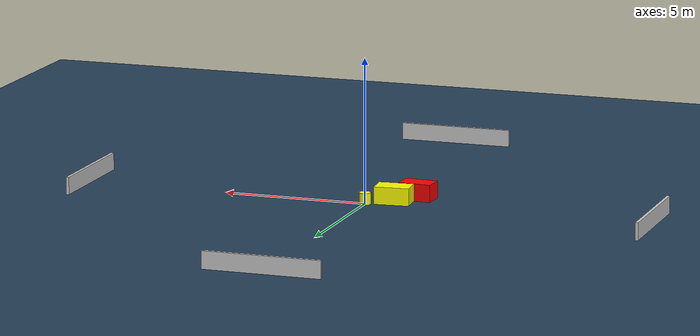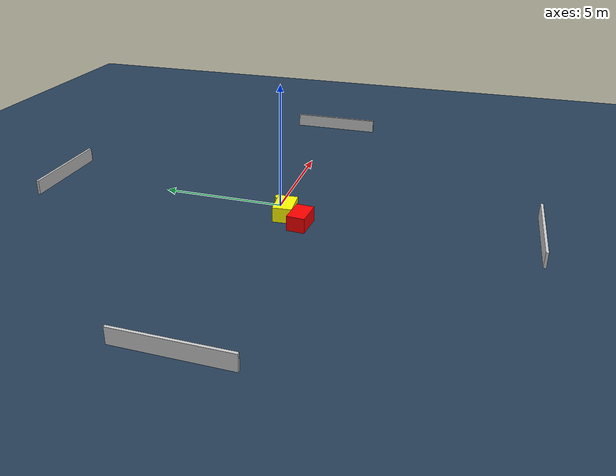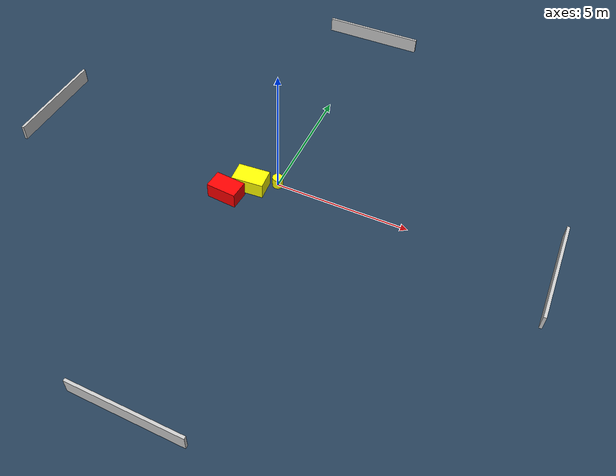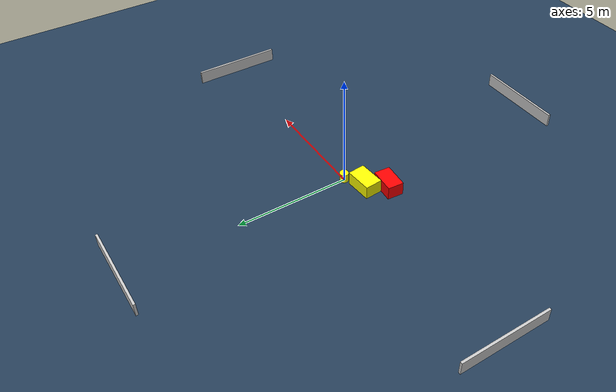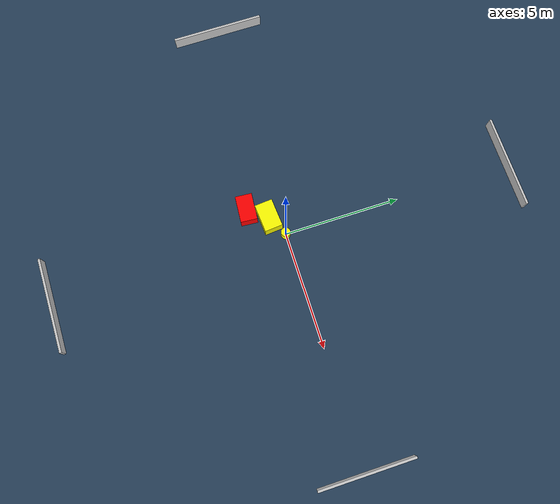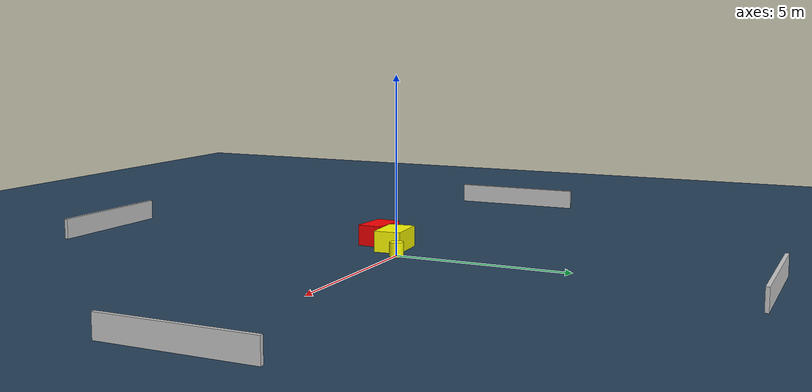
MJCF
<?xml version="1.0" ?>
<mujoco model="generated_environment">
  <option timestep="0.01" integrator="RK4" cone="elliptic"/>
  <default>
    <geom density="1"/>
  </default>
  <asset>
    <texture builtin="gradient" height="3072" name="skybox" rgb1="0.3 0.5 0.7" rgb2="0 0 0" type="skybox" width="512"/>
    <texture builtin="checker" height="300" name="groundplane" rgb1="0.2 0.3 0.4" rgb2="0.1 0.2 0.3" type="2d" width="300"/>
    <material name="groundplane" reflectance="0.2" texrepeat="5 5" texture="groundplane"/>
  </asset>
  <worldbody>
    <light dir="0 0 -1" directional="true" pos="0 0 1.5"/>
    <geom condim="3" friction="0.5 0.005 0.001" material="groundplane" name="floor" pos="0 0 0" size="0 0 0.05" type="plane"/>
    <body name="walls">
      <geom name="wall_1" condim="4" pos="-10.0 0.0 0.3" rgba="0.800000011920929 0.800000011920929 0.800000011920929 1.0" size="0.05 2.0 0.3" type="box"/>
      <geom name="wall_2" condim="4" pos="10.0 0.0 0.3" rgba="0.800000011920929 0.800000011920929 0.800000011920929 1.0" size="0.05 2.0 0.3" type="box"/>
      <geom name="wall_3" condim="4" pos="0.0 -10.0 0.3" rgba="0.800000011920929 0.800000011920929 0.800000011920929 1.0" size="2.0 0.05 0.3" type="box"/>
      <geom name="wall_4" condim="4" pos="0.0 10.0 0.3" rgba="0.800000011920929 0.800000011920929 0.800000011920929 1.0" size="2.0 0.05 0.3" type="box"/>
    </body>
    <body name="robot">
      <joint name="joint_x" type="slide" pos="0 0 0" axis="1 0 0"/>
      <joint name="joint_y" type="slide" pos="0 0 0" axis="0 1 0"/>
      <geom name="robot" type="cylinder" pos="0.0 0.0 0.2" size="0.2 0.2 0.0" mass="5.0" friction="1.0 0.005 0.0001" condim="4" rgba="1.0 1.0 0.0 1.0"/>
    </body>
    <body name="obstacle_1_movable">
      <geom name="obstacle_1_movable" condim="4" pos="-0.8651734745930472 -0.4763659870874975 0.3" euler="0 0 4.288576189638156" friction="0.0 0.005 0.001" rgba="1.0 1.0 0.0 1.0" size="0.6014888721698434 0.3831985754542958 0.3" type="box" mass="0.1"/>
      <joint type="free"/>
    </body>
    <body name="obstacle_2_static">
      <geom name="obstacle_2_static" condim="4" pos="-1.4663248465435228 -1.2654319987903278 0.3" euler="0 0 355.59845074028516" friction="0.0 0.005 0.001" rgba="1.0 0.0 0.0 1.0" size="0.5687518896046854 0.35600130252786377 0.3" type="box"/>
    </body>
  </worldbody>
  <actuator>
    <motor name="actuator_x" joint="joint_x" gear="1" ctrlrange="-1 1"/>
    <motor name="actuator_y" joint="joint_y" gear="1" ctrlrange="-1 1"/>
  </actuator>
</mujoco>
